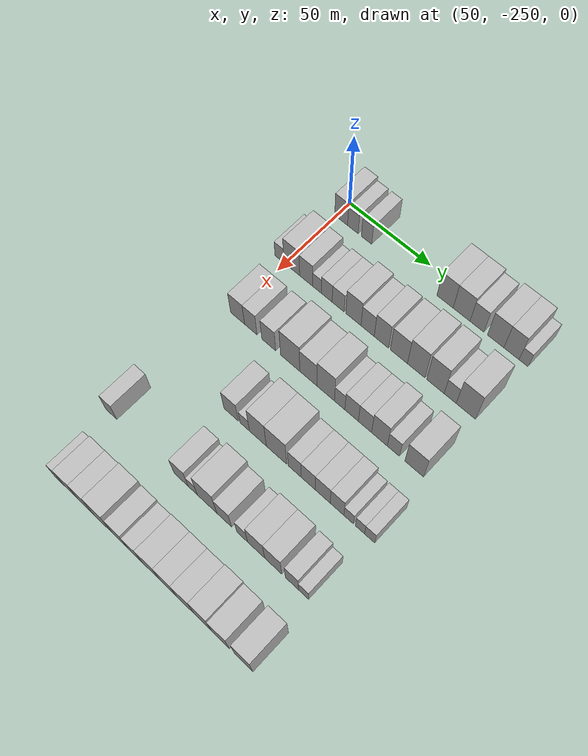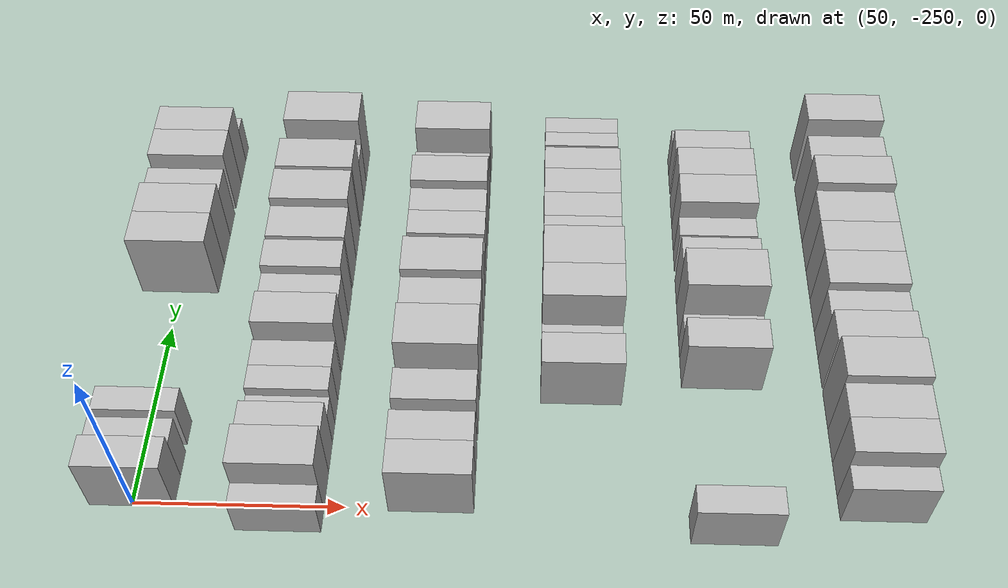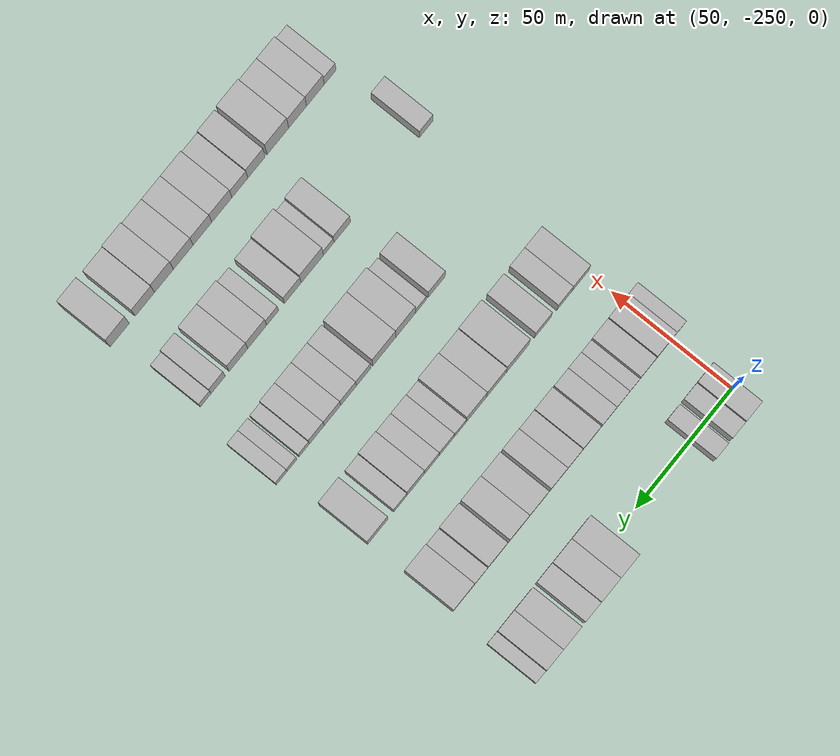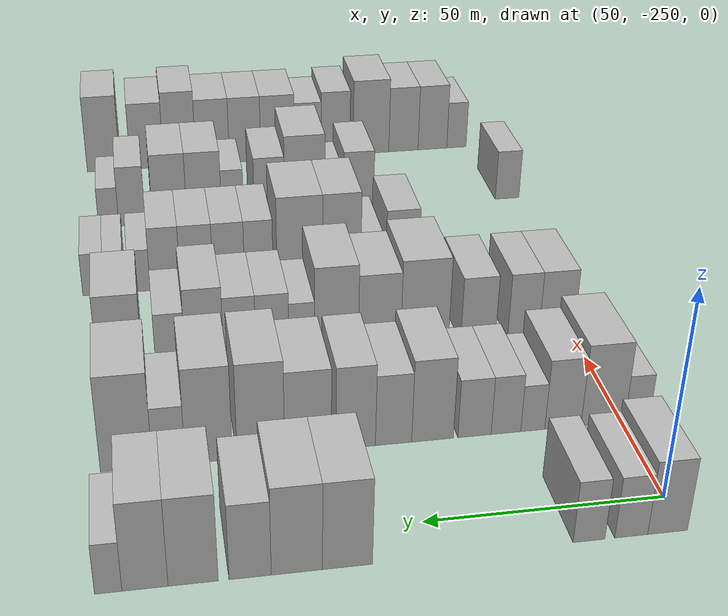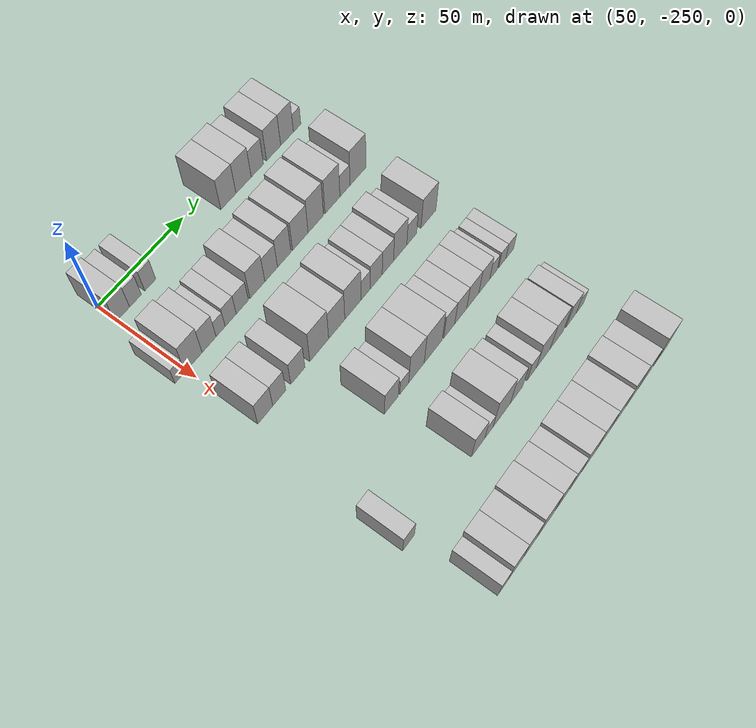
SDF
<sdf version="1.6">
 <world name="default">
  <model name="building_37">
   <static>1</static>
   <pose>50.0000 -246.8134 0 0.000000 0.000000 0.000000</pose>
   <link name="link">
    <pose>0 0 9.00 0 0 0</pose>
    <collision name="collision"><geometry><box><size>20.0000 8.1516 18.0000</size></box></geometry></collision>
    <visual name="visual">
     <cast_shadows>0</cast_shadows>
     <geometry><box><size>20.0000 8.1516 18.0000</size></box></geometry>
     <material>
      <script>
       <uri>model://HANNAS_wall/materials/scripts</uri>
       <uri>model://HANNAS_wall/materials/textures</uri>
       <name>vrc/HANNAS_wall</name>
      </script>
     </material>
    </visual>
   </link>
  </model>
  <model name="building_38">
   <static>1</static>
   <pose>50.0000 -239.3808 0 0.000000 0.000000 0.000000</pose>
   <link name="link">
    <pose>0 0 7.50 0 0 0</pose>
    <collision name="collision"><geometry><box><size>20.0000 6.7136 15.0000</size></box></geometry></collision>
    <visual name="visual">
     <cast_shadows>0</cast_shadows>
     <geometry><box><size>20.0000 6.7136 15.0000</size></box></geometry>
     <material>
      <script>
       <uri>model://HANNAS_wall/materials/scripts</uri>
       <uri>model://HANNAS_wall/materials/textures</uri>
       <name>vrc/HANNAS_wall</name>
      </script>
     </material>
    </visual>
   </link>
  </model>
  <model name="building_39">
   <static>1</static>
   <pose>50.0000 -230.8097 0 0.000000 0.000000 0.000000</pose>
   <link name="link">
    <pose>0 0 7.50 0 0 0</pose>
    <collision name="collision"><geometry><box><size>20.0000 6.4286 15.0000</size></box></geometry></collision>
    <visual name="visual">
     <cast_shadows>0</cast_shadows>
     <geometry><box><size>20.0000 6.4286 15.0000</size></box></geometry>
     <material>
      <script>
       <uri>model://HANNAS_wall/materials/scripts</uri>
       <uri>model://HANNAS_wall/materials/textures</uri>
       <name>vrc/HANNAS_wall</name>
      </script>
     </material>
    </visual>
   </link>
  </model>
  <model name="building_40">
   <static>1</static>
   <pose>50.0000 -183.2096 0 0.000000 0.000000 0.000000</pose>
   <link name="link">
    <pose>0 0 10.50 0 0 0</pose>
    <collision name="collision"><geometry><box><size>20.0000 9.5905 21.0000</size></box></geometry></collision>
    <visual name="visual">
     <cast_shadows>0</cast_shadows>
     <geometry><box><size>20.0000 9.5905 21.0000</size></box></geometry>
     <material>
      <script>
       <uri>model://HANNAS_wall/materials/scripts</uri>
       <uri>model://HANNAS_wall/materials/textures</uri>
       <name>vrc/HANNAS_wall</name>
      </script>
     </material>
    </visual>
   </link>
  </model>
  <model name="building_41">
   <static>1</static>
   <pose>50.0000 -173.5254 0 0.000000 0.000000 0.000000</pose>
   <link name="link">
    <pose>0 0 10.50 0 0 0</pose>
    <collision name="collision"><geometry><box><size>20.0000 9.7779 21.0000</size></box></geometry></collision>
    <visual name="visual">
     <cast_shadows>0</cast_shadows>
     <geometry><box><size>20.0000 9.7779 21.0000</size></box></geometry>
     <material>
      <script>
       <uri>model://HANNAS_wall/materials/scripts</uri>
       <uri>model://HANNAS_wall/materials/textures</uri>
       <name>vrc/HANNAS_wall</name>
      </script>
     </material>
    </visual>
   </link>
  </model>
  <model name="building_42">
   <static>1</static>
   <pose>50.0000 -164.6421 0 0.000000 0.000000 0.000000</pose>
   <link name="link">
    <pose>0 0 9.00 0 0 0</pose>
    <collision name="collision"><geometry><box><size>20.0000 7.9887 18.0000</size></box></geometry></collision>
    <visual name="visual">
     <cast_shadows>0</cast_shadows>
     <geometry><box><size>20.0000 7.9887 18.0000</size></box></geometry>
     <material>
      <script>
       <uri>model://HANNAS_wall/materials/scripts</uri>
       <uri>model://HANNAS_wall/materials/textures</uri>
       <name>vrc/HANNAS_wall</name>
      </script>
     </material>
    </visual>
   </link>
  </model>
  <model name="building_43">
   <static>1</static>
   <pose>50.0000 -153.9660 0 0.000000 0.000000 0.000000</pose>
   <link name="link">
    <pose>0 0 10.50 0 0 0</pose>
    <collision name="collision"><geometry><box><size>20.0000 9.3635 21.0000</size></box></geometry></collision>
    <visual name="visual">
     <cast_shadows>0</cast_shadows>
     <geometry><box><size>20.0000 9.3635 21.0000</size></box></geometry>
     <material>
      <script>
       <uri>model://HANNAS_wall/materials/scripts</uri>
       <uri>model://HANNAS_wall/materials/textures</uri>
       <name>vrc/HANNAS_wall</name>
      </script>
     </material>
    </visual>
   </link>
  </model>
  <model name="building_44">
   <static>1</static>
   <pose>50.0000 -145.0248 0 0.000000 0.000000 0.000000</pose>
   <link name="link">
    <pose>0 0 10.50 0 0 0</pose>
    <collision name="collision"><geometry><box><size>20.0000 8.5188 21.0000</size></box></geometry></collision>
    <visual name="visual">
     <cast_shadows>0</cast_shadows>
     <geometry><box><size>20.0000 8.5188 21.0000</size></box></geometry>
     <material>
      <script>
       <uri>model://HANNAS_wall/materials/scripts</uri>
       <uri>model://HANNAS_wall/materials/textures</uri>
       <name>vrc/HANNAS_wall</name>
      </script>
     </material>
    </visual>
   </link>
  </model>
  <model name="building_45">
   <static>1</static>
   <pose>50.0000 -138.2439 0 0.000000 0.000000 0.000000</pose>
   <link name="link">
    <pose>0 0 6.00 0 0 0</pose>
    <collision name="collision"><geometry><box><size>20.0000 5.0429 12.0000</size></box></geometry></collision>
    <visual name="visual">
     <cast_shadows>0</cast_shadows>
     <geometry><box><size>20.0000 5.0429 12.0000</size></box></geometry>
     <material>
      <script>
       <uri>model://HANNAS_wall/materials/scripts</uri>
       <uri>model://HANNAS_wall/materials/textures</uri>
       <name>vrc/HANNAS_wall</name>
      </script>
     </material>
    </visual>
   </link>
  </model>
  <model name="building_162">
   <static>1</static>
   <pose>85.0000 -253.6215 0 0.000000 0.000000 0.000000</pose>
   <link name="link">
    <pose>0 0 6.00 0 0 0</pose>
    <collision name="collision"><geometry><box><size>20.0000 5.6763 12.0000</size></box></geometry></collision>
    <visual name="visual">
     <cast_shadows>0</cast_shadows>
     <geometry><box><size>20.0000 5.6763 12.0000</size></box></geometry>
     <material>
      <script>
       <uri>model://HANNAS_wall/materials/scripts</uri>
       <uri>model://HANNAS_wall/materials/textures</uri>
       <name>vrc/HANNAS_wall</name>
      </script>
     </material>
    </visual>
   </link>
  </model>
  <model name="building_163">
   <static>1</static>
   <pose>85.0000 -245.7856 0 0.000000 0.000000 0.000000</pose>
   <link name="link">
    <pose>0 0 10.50 0 0 0</pose>
    <collision name="collision"><geometry><box><size>20.0000 9.9957 21.0000</size></box></geometry></collision>
    <visual name="visual">
     <cast_shadows>0</cast_shadows>
     <geometry><box><size>20.0000 9.9957 21.0000</size></box></geometry>
     <material>
      <script>
       <uri>model://HANNAS_wall/materials/scripts</uri>
       <uri>model://HANNAS_wall/materials/textures</uri>
       <name>vrc/HANNAS_wall</name>
      </script>
     </material>
    </visual>
   </link>
  </model>
  <model name="building_164">
   <static>1</static>
   <pose>85.0000 -236.7009 0 0.000000 0.000000 0.000000</pose>
   <link name="link">
    <pose>0 0 9.00 0 0 0</pose>
    <collision name="collision"><geometry><box><size>20.0000 8.1736 18.0000</size></box></geometry></collision>
    <visual name="visual">
     <cast_shadows>0</cast_shadows>
     <geometry><box><size>20.0000 8.1736 18.0000</size></box></geometry>
     <material>
      <script>
       <uri>model://HANNAS_wall/materials/scripts</uri>
       <uri>model://HANNAS_wall/materials/textures</uri>
       <name>vrc/HANNAS_wall</name>
      </script>
     </material>
    </visual>
   </link>
  </model>
  <model name="building_165">
   <static>1</static>
   <pose>85.0000 -229.9182 0 0.000000 0.000000 0.000000</pose>
   <link name="link">
    <pose>0 0 6.00 0 0 0</pose>
    <collision name="collision"><geometry><box><size>20.0000 5.3918 12.0000</size></box></geometry></collision>
    <visual name="visual">
     <cast_shadows>0</cast_shadows>
     <geometry><box><size>20.0000 5.3918 12.0000</size></box></geometry>
     <material>
      <script>
       <uri>model://HANNAS_wall/materials/scripts</uri>
       <uri>model://HANNAS_wall/materials/textures</uri>
       <name>vrc/HANNAS_wall</name>
      </script>
     </material>
    </visual>
   </link>
  </model>
  <model name="building_166">
   <static>1</static>
   <pose>85.0000 -223.9198 0 0.000000 0.000000 0.000000</pose>
   <link name="link">
    <pose>0 0 7.50 0 0 0</pose>
    <collision name="collision"><geometry><box><size>20.0000 6.6050 15.0000</size></box></geometry></collision>
    <visual name="visual">
     <cast_shadows>0</cast_shadows>
     <geometry><box><size>20.0000 6.6050 15.0000</size></box></geometry>
     <material>
      <script>
       <uri>model://HANNAS_wall/materials/scripts</uri>
       <uri>model://HANNAS_wall/materials/textures</uri>
       <name>vrc/HANNAS_wall</name>
      </script>
     </material>
    </visual>
   </link>
  </model>
  <model name="building_167">
   <static>1</static>
   <pose>85.0000 -216.9333 0 0.000000 0.000000 0.000000</pose>
   <link name="link">
    <pose>0 0 7.50 0 0 0</pose>
    <collision name="collision"><geometry><box><size>20.0000 7.3680 15.0000</size></box></geometry></collision>
    <visual name="visual">
     <cast_shadows>0</cast_shadows>
     <geometry><box><size>20.0000 7.3680 15.0000</size></box></geometry>
     <material>
      <script>
       <uri>model://HANNAS_wall/materials/scripts</uri>
       <uri>model://HANNAS_wall/materials/textures</uri>
       <name>vrc/HANNAS_wall</name>
      </script>
     </material>
    </visual>
   </link>
  </model>
  <model name="building_168">
   <static>1</static>
   <pose>85.0000 -207.6670 0 0.000000 0.000000 0.000000</pose>
   <link name="link">
    <pose>0 0 10.50 0 0 0</pose>
    <collision name="collision"><geometry><box><size>20.0000 9.1646 21.0000</size></box></geometry></collision>
    <visual name="visual">
     <cast_shadows>0</cast_shadows>
     <geometry><box><size>20.0000 9.1646 21.0000</size></box></geometry>
     <material>
      <script>
       <uri>model://HANNAS_wall/materials/scripts</uri>
       <uri>model://HANNAS_wall/materials/textures</uri>
       <name>vrc/HANNAS_wall</name>
      </script>
     </material>
    </visual>
   </link>
  </model>
  <model name="building_169">
   <static>1</static>
   <pose>85.0000 -199.1311 0 0.000000 0.000000 0.000000</pose>
   <link name="link">
    <pose>0 0 9.00 0 0 0</pose>
    <collision name="collision"><geometry><box><size>20.0000 7.9071 18.0000</size></box></geometry></collision>
    <visual name="visual">
     <cast_shadows>0</cast_shadows>
     <geometry><box><size>20.0000 7.9071 18.0000</size></box></geometry>
     <material>
      <script>
       <uri>model://HANNAS_wall/materials/scripts</uri>
       <uri>model://HANNAS_wall/materials/textures</uri>
       <name>vrc/HANNAS_wall</name>
      </script>
     </material>
    </visual>
   </link>
  </model>
  <model name="building_170">
   <static>1</static>
   <pose>85.0000 -190.9123 0 0.000000 0.000000 0.000000</pose>
   <link name="link">
    <pose>0 0 10.50 0 0 0</pose>
    <collision name="collision"><geometry><box><size>20.0000 8.5306 21.0000</size></box></geometry></collision>
    <visual name="visual">
     <cast_shadows>0</cast_shadows>
     <geometry><box><size>20.0000 8.5306 21.0000</size></box></geometry>
     <material>
      <script>
       <uri>model://HANNAS_wall/materials/scripts</uri>
       <uri>model://HANNAS_wall/materials/textures</uri>
       <name>vrc/HANNAS_wall</name>
      </script>
     </material>
    </visual>
   </link>
  </model>
  <model name="building_171">
   <static>1</static>
   <pose>85.0000 -180.6448 0 0.000000 0.000000 0.000000</pose>
   <link name="link">
    <pose>0 0 10.50 0 0 0</pose>
    <collision name="collision"><geometry><box><size>20.0000 10.0044 21.0000</size></box></geometry></collision>
    <visual name="visual">
     <cast_shadows>0</cast_shadows>
     <geometry><box><size>20.0000 10.0044 21.0000</size></box></geometry>
     <material>
      <script>
       <uri>model://HANNAS_wall/materials/scripts</uri>
       <uri>model://HANNAS_wall/materials/textures</uri>
       <name>vrc/HANNAS_wall</name>
      </script>
     </material>
    </visual>
   </link>
  </model>
  <model name="building_172">
   <static>1</static>
   <pose>85.0000 -170.6055 0 0.000000 0.000000 0.000000</pose>
   <link name="link">
    <pose>0 0 12.00 0 0 0</pose>
    <collision name="collision"><geometry><box><size>20.0000 10.0742 24.0000</size></box></geometry></collision>
    <visual name="visual">
     <cast_shadows>0</cast_shadows>
     <geometry><box><size>20.0000 10.0742 24.0000</size></box></geometry>
     <material>
      <script>
       <uri>model://HANNAS_wall/materials/scripts</uri>
       <uri>model://HANNAS_wall/materials/textures</uri>
       <name>vrc/HANNAS_wall</name>
      </script>
     </material>
    </visual>
   </link>
  </model>
  <model name="building_173">
   <static>1</static>
   <pose>85.0000 -159.6050 0 0.000000 0.000000 0.000000</pose>
   <link name="link">
    <pose>0 0 12.00 0 0 0</pose>
    <collision name="collision"><geometry><box><size>20.0000 9.9269 24.0000</size></box></geometry></collision>
    <visual name="visual">
     <cast_shadows>0</cast_shadows>
     <geometry><box><size>20.0000 9.9269 24.0000</size></box></geometry>
     <material>
      <script>
       <uri>model://HANNAS_wall/materials/scripts</uri>
       <uri>model://HANNAS_wall/materials/textures</uri>
       <name>vrc/HANNAS_wall</name>
      </script>
     </material>
    </visual>
   </link>
  </model>
  <model name="building_174">
   <static>1</static>
   <pose>85.0000 -151.2278 0 0.000000 0.000000 0.000000</pose>
   <link name="link">
    <pose>0 0 7.50 0 0 0</pose>
    <collision name="collision"><geometry><box><size>20.0000 6.8276 15.0000</size></box></geometry></collision>
    <visual name="visual">
     <cast_shadows>0</cast_shadows>
     <geometry><box><size>20.0000 6.8276 15.0000</size></box></geometry>
     <material>
      <script>
       <uri>model://HANNAS_wall/materials/scripts</uri>
       <uri>model://HANNAS_wall/materials/textures</uri>
       <name>vrc/HANNAS_wall</name>
      </script>
     </material>
    </visual>
   </link>
  </model>
  <model name="building_175">
   <static>1</static>
   <pose>85.0000 -142.4288 0 0.000000 0.000000 0.000000</pose>
   <link name="link">
    <pose>0 0 12.00 0 0 0</pose>
    <collision name="collision"><geometry><box><size>20.0000 10.7703 24.0000</size></box></geometry></collision>
    <visual name="visual">
     <cast_shadows>0</cast_shadows>
     <geometry><box><size>20.0000 10.7703 24.0000</size></box></geometry>
     <material>
      <script>
       <uri>model://HANNAS_wall/materials/scripts</uri>
       <uri>model://HANNAS_wall/materials/textures</uri>
       <name>vrc/HANNAS_wall</name>
      </script>
     </material>
    </visual>
   </link>
  </model>
  <model name="building_292">
   <static>1</static>
   <pose>120.0000 -246.1906 0 0.000000 0.000000 0.000000</pose>
   <link name="link">
    <pose>0 0 9.00 0 0 0</pose>
    <collision name="collision"><geometry><box><size>20.0000 8.8105 18.0000</size></box></geometry></collision>
    <visual name="visual">
     <cast_shadows>0</cast_shadows>
     <geometry><box><size>20.0000 8.8105 18.0000</size></box></geometry>
     <material>
      <script>
       <uri>model://HANNAS_wall/materials/scripts</uri>
       <uri>model://HANNAS_wall/materials/textures</uri>
       <name>vrc/HANNAS_wall</name>
      </script>
     </material>
    </visual>
   </link>
  </model>
  <model name="building_293">
   <static>1</static>
   <pose>120.0000 -237.9178 0 0.000000 0.000000 0.000000</pose>
   <link name="link">
    <pose>0 0 9.00 0 0 0</pose>
    <collision name="collision"><geometry><box><size>20.0000 7.7353 18.0000</size></box></geometry></collision>
    <visual name="visual">
     <cast_shadows>0</cast_shadows>
     <geometry><box><size>20.0000 7.7353 18.0000</size></box></geometry>
     <material>
      <script>
       <uri>model://HANNAS_wall/materials/scripts</uri>
       <uri>model://HANNAS_wall/materials/textures</uri>
       <name>vrc/HANNAS_wall</name>
      </script>
     </material>
    </visual>
   </link>
  </model>
  <model name="building_294">
   <static>1</static>
   <pose>120.0000 -226.7708 0 0.000000 0.000000 0.000000</pose>
   <link name="link">
    <pose>0 0 9.00 0 0 0</pose>
    <collision name="collision"><geometry><box><size>20.0000 8.5586 18.0000</size></box></geometry></collision>
    <visual name="visual">
     <cast_shadows>0</cast_shadows>
     <geometry><box><size>20.0000 8.5586 18.0000</size></box></geometry>
     <material>
      <script>
       <uri>model://HANNAS_wall/materials/scripts</uri>
       <uri>model://HANNAS_wall/materials/textures</uri>
       <name>vrc/HANNAS_wall</name>
      </script>
     </material>
    </visual>
   </link>
  </model>
  <model name="building_295">
   <static>1</static>
   <pose>120.0000 -213.6636 0 0.000000 0.000000 0.000000</pose>
   <link name="link">
    <pose>0 0 12.00 0 0 0</pose>
    <collision name="collision"><geometry><box><size>20.0000 11.6559 24.0000</size></box></geometry></collision>
    <visual name="visual">
     <cast_shadows>0</cast_shadows>
     <geometry><box><size>20.0000 11.6559 24.0000</size></box></geometry>
     <material>
      <script>
       <uri>model://HANNAS_wall/materials/scripts</uri>
       <uri>model://HANNAS_wall/materials/textures</uri>
       <name>vrc/HANNAS_wall</name>
      </script>
     </material>
    </visual>
   </link>
  </model>
  <model name="building_296">
   <static>1</static>
   <pose>120.0000 -202.7503 0 0.000000 0.000000 0.000000</pose>
   <link name="link">
    <pose>0 0 10.50 0 0 0</pose>
    <collision name="collision"><geometry><box><size>20.0000 10.1706 21.0000</size></box></geometry></collision>
    <visual name="visual">
     <cast_shadows>0</cast_shadows>
     <geometry><box><size>20.0000 10.1706 21.0000</size></box></geometry>
     <material>
      <script>
       <uri>model://HANNAS_wall/materials/scripts</uri>
       <uri>model://HANNAS_wall/materials/textures</uri>
       <name>vrc/HANNAS_wall</name>
      </script>
     </material>
    </visual>
   </link>
  </model>
  <model name="building_297">
   <static>1</static>
   <pose>120.0000 -192.4606 0 0.000000 0.000000 0.000000</pose>
   <link name="link">
    <pose>0 0 12.00 0 0 0</pose>
    <collision name="collision"><geometry><box><size>20.0000 10.4089 24.0000</size></box></geometry></collision>
    <visual name="visual">
     <cast_shadows>0</cast_shadows>
     <geometry><box><size>20.0000 10.4089 24.0000</size></box></geometry>
     <material>
      <script>
       <uri>model://HANNAS_wall/materials/scripts</uri>
       <uri>model://HANNAS_wall/materials/textures</uri>
       <name>vrc/HANNAS_wall</name>
      </script>
     </material>
    </visual>
   </link>
  </model>
  <model name="building_298">
   <static>1</static>
   <pose>120.0000 -184.2060 0 0.000000 0.000000 0.000000</pose>
   <link name="link">
    <pose>0 0 7.50 0 0 0</pose>
    <collision name="collision"><geometry><box><size>20.0000 6.1002 15.0000</size></box></geometry></collision>
    <visual name="visual">
     <cast_shadows>0</cast_shadows>
     <geometry><box><size>20.0000 6.1002 15.0000</size></box></geometry>
     <material>
      <script>
       <uri>model://HANNAS_wall/materials/scripts</uri>
       <uri>model://HANNAS_wall/materials/textures</uri>
       <name>vrc/HANNAS_wall</name>
      </script>
     </material>
    </visual>
   </link>
  </model>
  <model name="building_299">
   <static>1</static>
   <pose>120.0000 -177.2683 0 0.000000 0.000000 0.000000</pose>
   <link name="link">
    <pose>0 0 9.00 0 0 0</pose>
    <collision name="collision"><geometry><box><size>20.0000 7.7753 18.0000</size></box></geometry></collision>
    <visual name="visual">
     <cast_shadows>0</cast_shadows>
     <geometry><box><size>20.0000 7.7753 18.0000</size></box></geometry>
     <material>
      <script>
       <uri>model://HANNAS_wall/materials/scripts</uri>
       <uri>model://HANNAS_wall/materials/textures</uri>
       <name>vrc/HANNAS_wall</name>
      </script>
     </material>
    </visual>
   </link>
  </model>
  <model name="building_300">
   <static>1</static>
   <pose>120.0000 -169.6016 0 0.000000 0.000000 0.000000</pose>
   <link name="link">
    <pose>0 0 9.00 0 0 0</pose>
    <collision name="collision"><geometry><box><size>20.0000 7.5580 18.0000</size></box></geometry></collision>
    <visual name="visual">
     <cast_shadows>0</cast_shadows>
     <geometry><box><size>20.0000 7.5580 18.0000</size></box></geometry>
     <material>
      <script>
       <uri>model://HANNAS_wall/materials/scripts</uri>
       <uri>model://HANNAS_wall/materials/textures</uri>
       <name>vrc/HANNAS_wall</name>
      </script>
     </material>
    </visual>
   </link>
  </model>
  <model name="building_301">
   <static>1</static>
   <pose>120.0000 -161.3523 0 0.000000 0.000000 0.000000</pose>
   <link name="link">
    <pose>0 0 10.50 0 0 0</pose>
    <collision name="collision"><geometry><box><size>20.0000 8.9405 21.0000</size></box></geometry></collision>
    <visual name="visual">
     <cast_shadows>0</cast_shadows>
     <geometry><box><size>20.0000 8.9405 21.0000</size></box></geometry>
     <material>
      <script>
       <uri>model://HANNAS_wall/materials/scripts</uri>
       <uri>model://HANNAS_wall/materials/textures</uri>
       <name>vrc/HANNAS_wall</name>
      </script>
     </material>
    </visual>
   </link>
  </model>
  <model name="building_302">
   <static>1</static>
   <pose>120.0000 -153.4699 0 0.000000 0.000000 0.000000</pose>
   <link name="link">
    <pose>0 0 7.50 0 0 0</pose>
    <collision name="collision"><geometry><box><size>20.0000 6.8245 15.0000</size></box></geometry></collision>
    <visual name="visual">
     <cast_shadows>0</cast_shadows>
     <geometry><box><size>20.0000 6.8245 15.0000</size></box></geometry>
     <material>
      <script>
       <uri>model://HANNAS_wall/materials/scripts</uri>
       <uri>model://HANNAS_wall/materials/textures</uri>
       <name>vrc/HANNAS_wall</name>
      </script>
     </material>
    </visual>
   </link>
  </model>
  <model name="building_303">
   <static>1</static>
   <pose>120.0000 -141.8685 0 0.000000 0.000000 0.000000</pose>
   <link name="link">
    <pose>0 0 10.50 0 0 0</pose>
    <collision name="collision"><geometry><box><size>20.0000 10.3783 21.0000</size></box></geometry></collision>
    <visual name="visual">
     <cast_shadows>0</cast_shadows>
     <geometry><box><size>20.0000 10.3783 21.0000</size></box></geometry>
     <material>
      <script>
       <uri>model://HANNAS_wall/materials/scripts</uri>
       <uri>model://HANNAS_wall/materials/textures</uri>
       <name>vrc/HANNAS_wall</name>
      </script>
     </material>
    </visual>
   </link>
  </model>
  <model name="building_418">
   <static>1</static>
   <pose>155.0000 -215.5293 0 0.000000 0.000000 0.000000</pose>
   <link name="link">
    <pose>0 0 9.00 0 0 0</pose>
    <collision name="collision"><geometry><box><size>20.0000 8.7457 18.0000</size></box></geometry></collision>
    <visual name="visual">
     <cast_shadows>0</cast_shadows>
     <geometry><box><size>20.0000 8.7457 18.0000</size></box></geometry>
     <material>
      <script>
       <uri>model://HANNAS_wall/materials/scripts</uri>
       <uri>model://HANNAS_wall/materials/textures</uri>
       <name>vrc/HANNAS_wall</name>
      </script>
     </material>
    </visual>
   </link>
  </model>
  <model name="building_419">
   <static>1</static>
   <pose>155.0000 -207.3340 0 0.000000 0.000000 0.000000</pose>
   <link name="link">
    <pose>0 0 6.00 0 0 0</pose>
    <collision name="collision"><geometry><box><size>20.0000 5.6449 12.0000</size></box></geometry></collision>
    <visual name="visual">
     <cast_shadows>0</cast_shadows>
     <geometry><box><size>20.0000 5.6449 12.0000</size></box></geometry>
     <material>
      <script>
       <uri>model://HANNAS_wall/materials/scripts</uri>
       <uri>model://HANNAS_wall/materials/textures</uri>
       <name>vrc/HANNAS_wall</name>
      </script>
     </material>
    </visual>
   </link>
  </model>
  <model name="building_420">
   <static>1</static>
   <pose>155.0000 -199.4985 0 0.000000 0.000000 0.000000</pose>
   <link name="link">
    <pose>0 0 12.00 0 0 0</pose>
    <collision name="collision"><geometry><box><size>20.0000 10.0261 24.0000</size></box></geometry></collision>
    <visual name="visual">
     <cast_shadows>0</cast_shadows>
     <geometry><box><size>20.0000 10.0261 24.0000</size></box></geometry>
     <material>
      <script>
       <uri>model://HANNAS_wall/materials/scripts</uri>
       <uri>model://HANNAS_wall/materials/textures</uri>
       <name>vrc/HANNAS_wall</name>
      </script>
     </material>
    </visual>
   </link>
  </model>
  <model name="building_421">
   <static>1</static>
   <pose>155.0000 -188.5542 0 0.000000 0.000000 0.000000</pose>
   <link name="link">
    <pose>0 0 12.00 0 0 0</pose>
    <collision name="collision"><geometry><box><size>20.0000 11.8624 24.0000</size></box></geometry></collision>
    <visual name="visual">
     <cast_shadows>0</cast_shadows>
     <geometry><box><size>20.0000 11.8624 24.0000</size></box></geometry>
     <material>
      <script>
       <uri>model://HANNAS_wall/materials/scripts</uri>
       <uri>model://HANNAS_wall/materials/textures</uri>
       <name>vrc/HANNAS_wall</name>
      </script>
     </material>
    </visual>
   </link>
  </model>
  <model name="building_422">
   <static>1</static>
   <pose>155.0000 -177.9218 0 0.000000 0.000000 0.000000</pose>
   <link name="link">
    <pose>0 0 9.00 0 0 0</pose>
    <collision name="collision"><geometry><box><size>20.0000 7.4024 18.0000</size></box></geometry></collision>
    <visual name="visual">
     <cast_shadows>0</cast_shadows>
     <geometry><box><size>20.0000 7.4024 18.0000</size></box></geometry>
     <material>
      <script>
       <uri>model://HANNAS_wall/materials/scripts</uri>
       <uri>model://HANNAS_wall/materials/textures</uri>
       <name>vrc/HANNAS_wall</name>
      </script>
     </material>
    </visual>
   </link>
  </model>
  <model name="building_423">
   <static>1</static>
   <pose>155.0000 -170.1767 0 0.000000 0.000000 0.000000</pose>
   <link name="link">
    <pose>0 0 9.00 0 0 0</pose>
    <collision name="collision"><geometry><box><size>20.0000 8.0877 18.0000</size></box></geometry></collision>
    <visual name="visual">
     <cast_shadows>0</cast_shadows>
     <geometry><box><size>20.0000 8.0877 18.0000</size></box></geometry>
     <material>
      <script>
       <uri>model://HANNAS_wall/materials/scripts</uri>
       <uri>model://HANNAS_wall/materials/textures</uri>
       <name>vrc/HANNAS_wall</name>
      </script>
     </material>
    </visual>
   </link>
  </model>
  <model name="building_424">
   <static>1</static>
   <pose>155.0000 -161.9340 0 0.000000 0.000000 0.000000</pose>
   <link name="link">
    <pose>0 0 9.00 0 0 0</pose>
    <collision name="collision"><geometry><box><size>20.0000 8.3976 18.0000</size></box></geometry></collision>
    <visual name="visual">
     <cast_shadows>0</cast_shadows>
     <geometry><box><size>20.0000 8.3976 18.0000</size></box></geometry>
     <material>
      <script>
       <uri>model://HANNAS_wall/materials/scripts</uri>
       <uri>model://HANNAS_wall/materials/textures</uri>
       <name>vrc/HANNAS_wall</name>
      </script>
     </material>
    </visual>
   </link>
  </model>
  <model name="building_425">
   <static>1</static>
   <pose>155.0000 -153.9166 0 0.000000 0.000000 0.000000</pose>
   <link name="link">
    <pose>0 0 9.00 0 0 0</pose>
    <collision name="collision"><geometry><box><size>20.0000 7.6372 18.0000</size></box></geometry></collision>
    <visual name="visual">
     <cast_shadows>0</cast_shadows>
     <geometry><box><size>20.0000 7.6372 18.0000</size></box></geometry>
     <material>
      <script>
       <uri>model://HANNAS_wall/materials/scripts</uri>
       <uri>model://HANNAS_wall/materials/textures</uri>
       <name>vrc/HANNAS_wall</name>
      </script>
     </material>
    </visual>
   </link>
  </model>
  <model name="building_426">
   <static>1</static>
   <pose>155.0000 -147.4269 0 0.000000 0.000000 0.000000</pose>
   <link name="link">
    <pose>0 0 6.00 0 0 0</pose>
    <collision name="collision"><geometry><box><size>20.0000 5.3420 12.0000</size></box></geometry></collision>
    <visual name="visual">
     <cast_shadows>0</cast_shadows>
     <geometry><box><size>20.0000 5.3420 12.0000</size></box></geometry>
     <material>
      <script>
       <uri>model://HANNAS_wall/materials/scripts</uri>
       <uri>model://HANNAS_wall/materials/textures</uri>
       <name>vrc/HANNAS_wall</name>
      </script>
     </material>
    </visual>
   </link>
  </model>
  <model name="building_427">
   <static>1</static>
   <pose>155.0000 -141.2250 0 0.000000 0.000000 0.000000</pose>
   <link name="link">
    <pose>0 0 6.00 0 0 0</pose>
    <collision name="collision"><geometry><box><size>20.0000 5.0619 12.0000</size></box></geometry></collision>
    <visual name="visual">
     <cast_shadows>0</cast_shadows>
     <geometry><box><size>20.0000 5.0619 12.0000</size></box></geometry>
     <material>
      <script>
       <uri>model://HANNAS_wall/materials/scripts</uri>
       <uri>model://HANNAS_wall/materials/textures</uri>
       <name>vrc/HANNAS_wall</name>
      </script>
     </material>
    </visual>
   </link>
  </model>
  <model name="building_428">
   <static>1</static>
   <pose>155.0000 -135.9075 0 0.000000 0.000000 0.000000</pose>
   <link name="link">
    <pose>0 0 6.00 0 0 0</pose>
    <collision name="collision"><geometry><box><size>20.0000 5.5730 12.0000</size></box></geometry></collision>
    <visual name="visual">
     <cast_shadows>0</cast_shadows>
     <geometry><box><size>20.0000 5.5730 12.0000</size></box></geometry>
     <material>
      <script>
       <uri>model://HANNAS_wall/materials/scripts</uri>
       <uri>model://HANNAS_wall/materials/textures</uri>
       <name>vrc/HANNAS_wall</name>
      </script>
     </material>
    </visual>
   </link>
  </model>
  <model name="building_543">
   <static>1</static>
   <pose>190.0000 -253.5126 0 0.000000 0.000000 0.000000</pose>
   <link name="link">
    <pose>0 0 7.50 0 0 0</pose>
    <collision name="collision"><geometry><box><size>20.0000 7.0124 15.0000</size></box></geometry></collision>
    <visual name="visual">
     <cast_shadows>0</cast_shadows>
     <geometry><box><size>20.0000 7.0124 15.0000</size></box></geometry>
     <material>
      <script>
       <uri>model://HANNAS_wall/materials/scripts</uri>
       <uri>model://HANNAS_wall/materials/textures</uri>
       <name>vrc/HANNAS_wall</name>
      </script>
     </material>
    </visual>
   </link>
  </model>
  <model name="building_544">
   <static>1</static>
   <pose>190.0000 -210.1868 0 0.000000 0.000000 0.000000</pose>
   <link name="link">
    <pose>0 0 9.00 0 0 0</pose>
    <collision name="collision"><geometry><box><size>20.0000 8.5464 18.0000</size></box></geometry></collision>
    <visual name="visual">
     <cast_shadows>0</cast_shadows>
     <geometry><box><size>20.0000 8.5464 18.0000</size></box></geometry>
     <material>
      <script>
       <uri>model://HANNAS_wall/materials/scripts</uri>
       <uri>model://HANNAS_wall/materials/textures</uri>
       <name>vrc/HANNAS_wall</name>
      </script>
     </material>
    </visual>
   </link>
  </model>
  <model name="building_545">
   <static>1</static>
   <pose>190.0000 -203.1999 0 0.000000 0.000000 0.000000</pose>
   <link name="link">
    <pose>0 0 6.00 0 0 0</pose>
    <collision name="collision"><geometry><box><size>20.0000 5.4275 12.0000</size></box></geometry></collision>
    <visual name="visual">
     <cast_shadows>0</cast_shadows>
     <geometry><box><size>20.0000 5.4275 12.0000</size></box></geometry>
     <material>
      <script>
       <uri>model://HANNAS_wall/materials/scripts</uri>
       <uri>model://HANNAS_wall/materials/textures</uri>
       <name>vrc/HANNAS_wall</name>
      </script>
     </material>
    </visual>
   </link>
  </model>
  <model name="building_546">
   <static>1</static>
   <pose>190.0000 -194.7645 0 0.000000 0.000000 0.000000</pose>
   <link name="link">
    <pose>0 0 12.00 0 0 0</pose>
    <collision name="collision"><geometry><box><size>20.0000 11.4432 24.0000</size></box></geometry></collision>
    <visual name="visual">
     <cast_shadows>0</cast_shadows>
     <geometry><box><size>20.0000 11.4432 24.0000</size></box></geometry>
     <material>
      <script>
       <uri>model://HANNAS_wall/materials/scripts</uri>
       <uri>model://HANNAS_wall/materials/textures</uri>
       <name>vrc/HANNAS_wall</name>
      </script>
     </material>
    </visual>
   </link>
  </model>
  <model name="building_547">
   <static>1</static>
   <pose>190.0000 -184.7644 0 0.000000 0.000000 0.000000</pose>
   <link name="link">
    <pose>0 0 9.00 0 0 0</pose>
    <collision name="collision"><geometry><box><size>20.0000 8.5569 18.0000</size></box></geometry></collision>
    <visual name="visual">
     <cast_shadows>0</cast_shadows>
     <geometry><box><size>20.0000 8.5569 18.0000</size></box></geometry>
     <material>
      <script>
       <uri>model://HANNAS_wall/materials/scripts</uri>
       <uri>model://HANNAS_wall/materials/textures</uri>
       <name>vrc/HANNAS_wall</name>
      </script>
     </material>
    </visual>
   </link>
  </model>
  <model name="building_548">
   <static>1</static>
   <pose>190.0000 -174.3987 0 0.000000 0.000000 0.000000</pose>
   <link name="link">
    <pose>0 0 7.50 0 0 0</pose>
    <collision name="collision"><geometry><box><size>20.0000 6.1747 15.0000</size></box></geometry></collision>
    <visual name="visual">
     <cast_shadows>0</cast_shadows>
     <geometry><box><size>20.0000 6.1747 15.0000</size></box></geometry>
     <material>
      <script>
       <uri>model://HANNAS_wall/materials/scripts</uri>
       <uri>model://HANNAS_wall/materials/textures</uri>
       <name>vrc/HANNAS_wall</name>
      </script>
     </material>
    </visual>
   </link>
  </model>
  <model name="building_549">
   <static>1</static>
   <pose>190.0000 -166.4724 0 0.000000 0.000000 0.000000</pose>
   <link name="link">
    <pose>0 0 10.50 0 0 0</pose>
    <collision name="collision"><geometry><box><size>20.0000 9.6780 21.0000</size></box></geometry></collision>
    <visual name="visual">
     <cast_shadows>0</cast_shadows>
     <geometry><box><size>20.0000 9.6780 21.0000</size></box></geometry>
     <material>
      <script>
       <uri>model://HANNAS_wall/materials/scripts</uri>
       <uri>model://HANNAS_wall/materials/textures</uri>
       <name>vrc/HANNAS_wall</name>
      </script>
     </material>
    </visual>
   </link>
  </model>
  <model name="building_550">
   <static>1</static>
   <pose>190.0000 -156.8782 0 0.000000 0.000000 0.000000</pose>
   <link name="link">
    <pose>0 0 10.50 0 0 0</pose>
    <collision name="collision"><geometry><box><size>20.0000 9.5103 21.0000</size></box></geometry></collision>
    <visual name="visual">
     <cast_shadows>0</cast_shadows>
     <geometry><box><size>20.0000 9.5103 21.0000</size></box></geometry>
     <material>
      <script>
       <uri>model://HANNAS_wall/materials/scripts</uri>
       <uri>model://HANNAS_wall/materials/textures</uri>
       <name>vrc/HANNAS_wall</name>
      </script>
     </material>
    </visual>
   </link>
  </model>
  <model name="building_551">
   <static>1</static>
   <pose>190.0000 -146.4702 0 0.000000 0.000000 0.000000</pose>
   <link name="link">
    <pose>0 0 9.00 0 0 0</pose>
    <collision name="collision"><geometry><box><size>20.0000 7.3059 18.0000</size></box></geometry></collision>
    <visual name="visual">
     <cast_shadows>0</cast_shadows>
     <geometry><box><size>20.0000 7.3059 18.0000</size></box></geometry>
     <material>
      <script>
       <uri>model://HANNAS_wall/materials/scripts</uri>
       <uri>model://HANNAS_wall/materials/textures</uri>
       <name>vrc/HANNAS_wall</name>
      </script>
     </material>
    </visual>
   </link>
  </model>
  <model name="building_552">
   <static>1</static>
   <pose>190.0000 -140.0600 0 0.000000 0.000000 0.000000</pose>
   <link name="link">
    <pose>0 0 6.00 0 0 0</pose>
    <collision name="collision"><geometry><box><size>20.0000 5.5146 12.0000</size></box></geometry></collision>
    <visual name="visual">
     <cast_shadows>0</cast_shadows>
     <geometry><box><size>20.0000 5.5146 12.0000</size></box></geometry>
     <material>
      <script>
       <uri>model://HANNAS_wall/materials/scripts</uri>
       <uri>model://HANNAS_wall/materials/textures</uri>
       <name>vrc/HANNAS_wall</name>
      </script>
     </material>
    </visual>
   </link>
  </model>
  <model name="building_663">
   <static>1</static>
   <pose>225.0000 -247.1293 0 0.000000 0.000000 0.000000</pose>
   <link name="link">
    <pose>0 0 7.50 0 0 0</pose>
    <collision name="collision"><geometry><box><size>20.0000 6.1093 15.0000</size></box></geometry></collision>
    <visual name="visual">
     <cast_shadows>0</cast_shadows>
     <geometry><box><size>20.0000 6.1093 15.0000</size></box></geometry>
     <material>
      <script>
       <uri>model://HANNAS_wall/materials/scripts</uri>
       <uri>model://HANNAS_wall/materials/textures</uri>
       <name>vrc/HANNAS_wall</name>
      </script>
     </material>
    </visual>
   </link>
  </model>
  <model name="building_664">
   <static>1</static>
   <pose>225.0000 -239.5304 0 0.000000 0.000000 0.000000</pose>
   <link name="link">
    <pose>0 0 10.50 0 0 0</pose>
    <collision name="collision"><geometry><box><size>20.0000 9.0886 21.0000</size></box></geometry></collision>
    <visual name="visual">
     <cast_shadows>0</cast_shadows>
     <geometry><box><size>20.0000 9.0886 21.0000</size></box></geometry>
     <material>
      <script>
       <uri>model://HANNAS_wall/materials/scripts</uri>
       <uri>model://HANNAS_wall/materials/textures</uri>
       <name>vrc/HANNAS_wall</name>
      </script>
     </material>
    </visual>
   </link>
  </model>
  <model name="building_665">
   <static>1</static>
   <pose>225.0000 -230.3844 0 0.000000 0.000000 0.000000</pose>
   <link name="link">
    <pose>0 0 10.50 0 0 0</pose>
    <collision name="collision"><geometry><box><size>20.0000 9.2033 21.0000</size></box></geometry></collision>
    <visual name="visual">
     <cast_shadows>0</cast_shadows>
     <geometry><box><size>20.0000 9.2033 21.0000</size></box></geometry>
     <material>
      <script>
       <uri>model://HANNAS_wall/materials/scripts</uri>
       <uri>model://HANNAS_wall/materials/textures</uri>
       <name>vrc/HANNAS_wall</name>
      </script>
     </material>
    </visual>
   </link>
  </model>
  <model name="building_666">
   <static>1</static>
   <pose>225.0000 -220.2179 0 0.000000 0.000000 0.000000</pose>
   <link name="link">
    <pose>0 0 12.00 0 0 0</pose>
    <collision name="collision"><geometry><box><size>20.0000 11.1295 24.0000</size></box></geometry></collision>
    <visual name="visual">
     <cast_shadows>0</cast_shadows>
     <geometry><box><size>20.0000 11.1295 24.0000</size></box></geometry>
     <material>
      <script>
       <uri>model://HANNAS_wall/materials/scripts</uri>
       <uri>model://HANNAS_wall/materials/textures</uri>
       <name>vrc/HANNAS_wall</name>
      </script>
     </material>
    </visual>
   </link>
  </model>
  <model name="building_667">
   <static>1</static>
   <pose>225.0000 -209.1997 0 0.000000 0.000000 0.000000</pose>
   <link name="link">
    <pose>0 0 10.50 0 0 0</pose>
    <collision name="collision"><geometry><box><size>20.0000 8.9070 21.0000</size></box></geometry></collision>
    <visual name="visual">
     <cast_shadows>0</cast_shadows>
     <geometry><box><size>20.0000 8.9070 21.0000</size></box></geometry>
     <material>
      <script>
       <uri>model://HANNAS_wall/materials/scripts</uri>
       <uri>model://HANNAS_wall/materials/textures</uri>
       <name>vrc/HANNAS_wall</name>
      </script>
     </material>
    </visual>
   </link>
  </model>
  <model name="building_668">
   <static>1</static>
   <pose>225.0000 -200.6481 0 0.000000 0.000000 0.000000</pose>
   <link name="link">
    <pose>0 0 9.00 0 0 0</pose>
    <collision name="collision"><geometry><box><size>20.0000 8.1962 18.0000</size></box></geometry></collision>
    <visual name="visual">
     <cast_shadows>0</cast_shadows>
     <geometry><box><size>20.0000 8.1962 18.0000</size></box></geometry>
     <material>
      <script>
       <uri>model://HANNAS_wall/materials/scripts</uri>
       <uri>model://HANNAS_wall/materials/textures</uri>
       <name>vrc/HANNAS_wall</name>
      </script>
     </material>
    </visual>
   </link>
  </model>
  <model name="building_669">
   <static>1</static>
   <pose>225.0000 -191.3825 0 0.000000 0.000000 0.000000</pose>
   <link name="link">
    <pose>0 0 10.50 0 0 0</pose>
    <collision name="collision"><geometry><box><size>20.0000 10.3350 21.0000</size></box></geometry></collision>
    <visual name="visual">
     <cast_shadows>0</cast_shadows>
     <geometry><box><size>20.0000 10.3350 21.0000</size></box></geometry>
     <material>
      <script>
       <uri>model://HANNAS_wall/materials/scripts</uri>
       <uri>model://HANNAS_wall/materials/textures</uri>
       <name>vrc/HANNAS_wall</name>
      </script>
     </material>
    </visual>
   </link>
  </model>
  <model name="building_670">
   <static>1</static>
   <pose>225.0000 -181.4264 0 0.000000 0.000000 0.000000</pose>
   <link name="link">
    <pose>0 0 10.50 0 0 0</pose>
    <collision name="collision"><geometry><box><size>20.0000 9.5771 21.0000</size></box></geometry></collision>
    <visual name="visual">
     <cast_shadows>0</cast_shadows>
     <geometry><box><size>20.0000 9.5771 21.0000</size></box></geometry>
     <material>
      <script>
       <uri>model://HANNAS_wall/materials/scripts</uri>
       <uri>model://HANNAS_wall/materials/textures</uri>
       <name>vrc/HANNAS_wall</name>
      </script>
     </material>
    </visual>
   </link>
  </model>
  <model name="building_671">
   <static>1</static>
   <pose>225.0000 -171.5825 0 0.000000 0.000000 0.000000</pose>
   <link name="link">
    <pose>0 0 10.50 0 0 0</pose>
    <collision name="collision"><geometry><box><size>20.0000 10.1106 21.0000</size></box></geometry></collision>
    <visual name="visual">
     <cast_shadows>0</cast_shadows>
     <geometry><box><size>20.0000 10.1106 21.0000</size></box></geometry>
     <material>
      <script>
       <uri>model://HANNAS_wall/materials/scripts</uri>
       <uri>model://HANNAS_wall/materials/textures</uri>
       <name>vrc/HANNAS_wall</name>
      </script>
     </material>
    </visual>
   </link>
  </model>
  <model name="building_672">
   <static>1</static>
   <pose>225.0000 -161.6850 0 0.000000 0.000000 0.000000</pose>
   <link name="link">
    <pose>0 0 12.00 0 0 0</pose>
    <collision name="collision"><geometry><box><size>20.0000 9.6843 24.0000</size></box></geometry></collision>
    <visual name="visual">
     <cast_shadows>0</cast_shadows>
     <geometry><box><size>20.0000 9.6843 24.0000</size></box></geometry>
     <material>
      <script>
       <uri>model://HANNAS_wall/materials/scripts</uri>
       <uri>model://HANNAS_wall/materials/textures</uri>
       <name>vrc/HANNAS_wall</name>
      </script>
     </material>
    </visual>
   </link>
  </model>
  <model name="building_673">
   <static>1</static>
   <pose>225.0000 -151.8824 0 0.000000 0.000000 0.000000</pose>
   <link name="link">
    <pose>0 0 10.50 0 0 0</pose>
    <collision name="collision"><geometry><box><size>20.0000 9.9209 21.0000</size></box></geometry></collision>
    <visual name="visual">
     <cast_shadows>0</cast_shadows>
     <geometry><box><size>20.0000 9.9209 21.0000</size></box></geometry>
     <material>
      <script>
       <uri>model://HANNAS_wall/materials/scripts</uri>
       <uri>model://HANNAS_wall/materials/textures</uri>
       <name>vrc/HANNAS_wall</name>
      </script>
     </material>
    </visual>
   </link>
  </model>
  <model name="building_674">
   <static>1</static>
   <pose>225.0000 -139.0343 0 0.000000 0.000000 0.000000</pose>
   <link name="link">
    <pose>0 0 12.00 0 0 0</pose>
    <collision name="collision"><geometry><box><size>20.0000 9.7754 24.0000</size></box></geometry></collision>
    <visual name="visual">
     <cast_shadows>0</cast_shadows>
     <geometry><box><size>20.0000 9.7754 24.0000</size></box></geometry>
     <material>
      <script>
       <uri>model://HANNAS_wall/materials/scripts</uri>
       <uri>model://HANNAS_wall/materials/textures</uri>
       <name>vrc/HANNAS_wall</name>
      </script>
     </material>
    </visual>
   </link>
  </model>
 </world>
</sdf>
